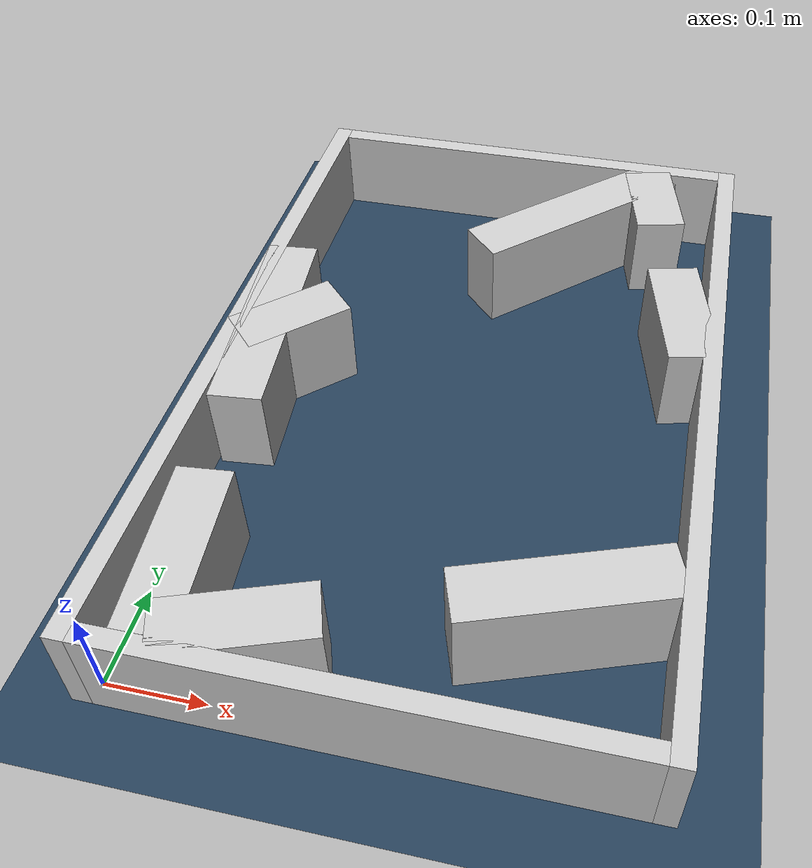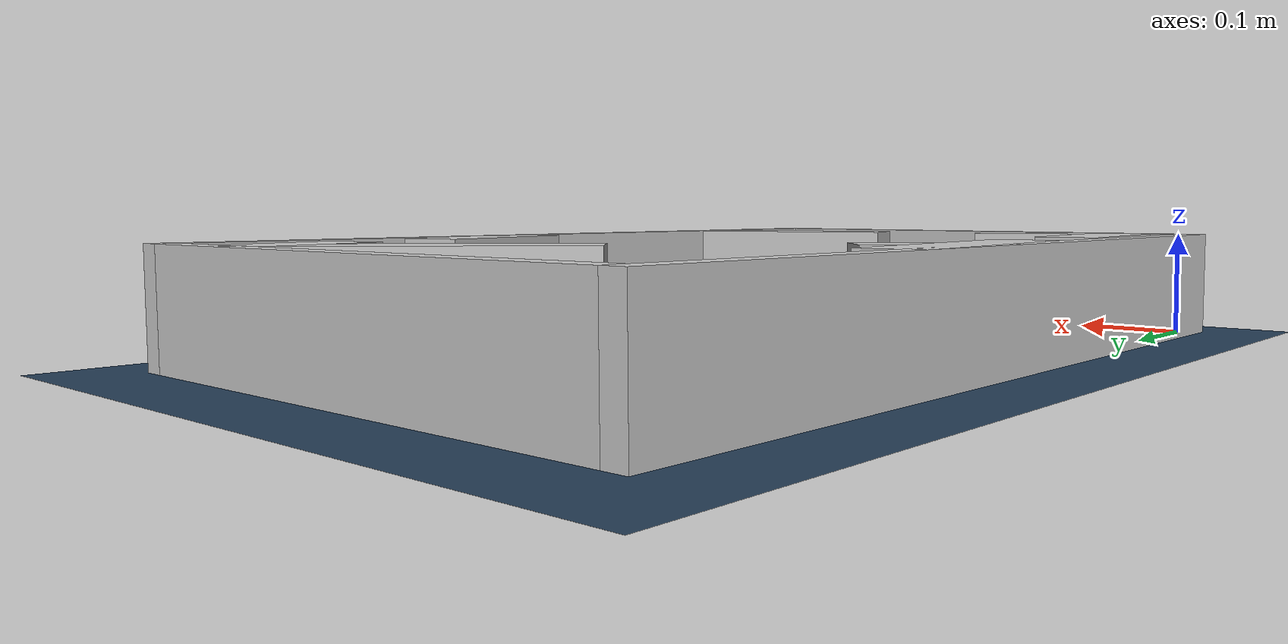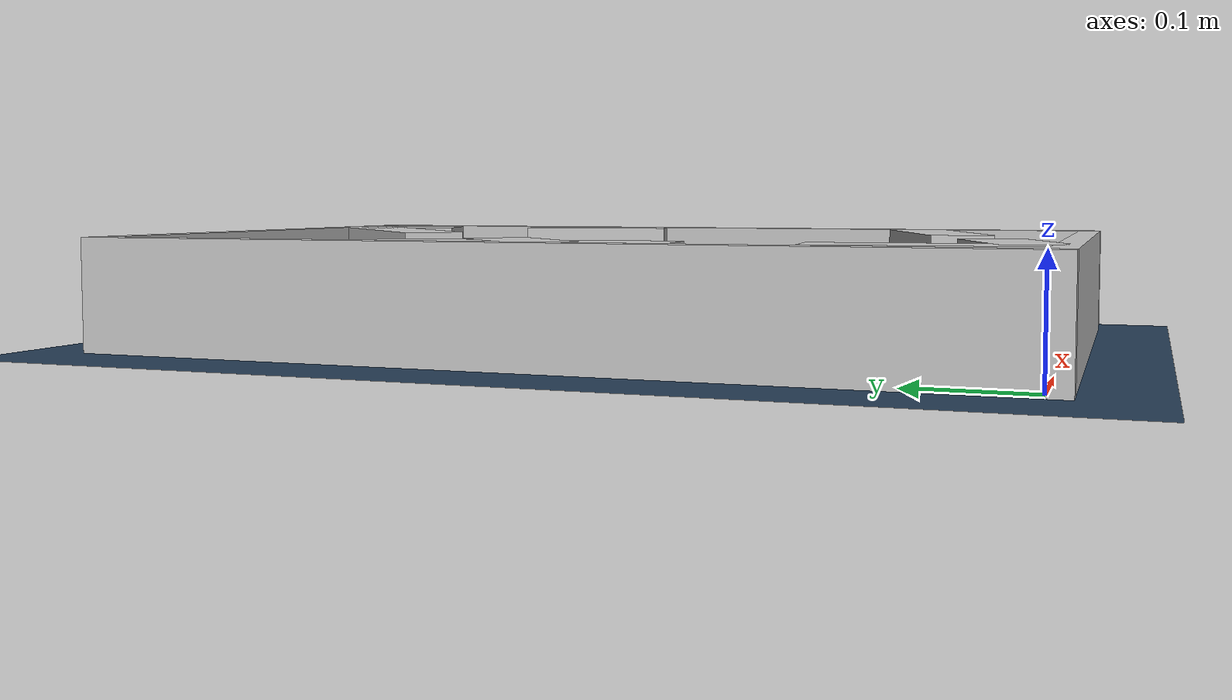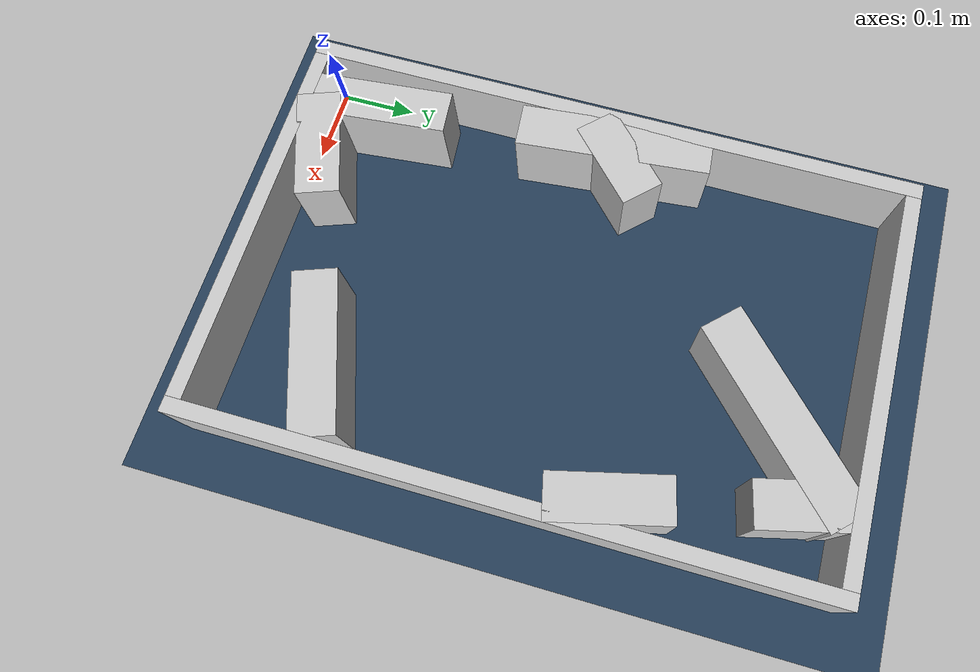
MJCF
<?xml version="1.0" ?>
<mujoco model="generated_real_template">
  <compiler angle="degree"/>
  <option timestep="0.002" integrator="implicitfast" iterations="100" cone="elliptic"/>
  <default>
    <geom density="1"/>
  </default>
  <asset>
    <texture builtin="gradient" height="3072" rgb1="0.3 0.5 0.7" rgb2="0 0 0" type="skybox" width="512"/>
    <texture builtin="checker" height="300" mark="edge" markrgb="0.8 0.8 0.8" name="groundplane" rgb1="0.2 0.3 0.4" rgb2="0.1 0.2 0.3" type="2d" width="300"/>
    <material name="groundplane" reflectance="0.2" texrepeat="5 5" texture="groundplane" texuniform="true"/>
  </asset>
  <worldbody>
    <light dir="0 0 -1" directional="true" pos="0 0 1.5"/>
    <geom name="floor" type="plane" condim="4" friction="0.5 0.005 0.001" material="groundplane" size="0 0 0.05"/>
    <body name="walls">
      <geom name="wall_boundary_left" type="box" condim="4" friction="1.0 0.005 0.0001" rgba="0.8 0.8 0.8 1" pos="-0.010000 0.387500 0.050000" euler="0 0 0.000000" size="0.010000 0.407500 0.050000"/>
      <geom name="wall_boundary_right" type="box" condim="4" friction="1.0 0.005 0.0001" rgba="0.8 0.8 0.8 1" pos="0.500000 0.387500 0.050000" euler="0 0 0.000000" size="0.010000 0.407500 0.050000"/>
      <geom name="wall_boundary_bottom" type="box" condim="4" friction="1.0 0.005 0.0001" rgba="0.8 0.8 0.8 1" pos="0.245000 -0.010000 0.050000" euler="0 0 0.000000" size="0.245000 0.010000 0.050000"/>
      <geom name="wall_boundary_top" type="box" condim="4" friction="1.0 0.005 0.0001" rgba="0.8 0.8 0.8 1" pos="0.245000 0.785000 0.050000" euler="0 0 0.000000" size="0.245000 0.010000 0.050000"/>
      <geom name="wall_inner_1_1" type="box" condim="4" friction="1.0 0.005 0.0001" rgba="0.8 0.8 0.8 1" pos="0.464695 0.508222 0.050000" euler="0 0 103.491467" size="0.075398 0.028500 0.050000"/>
      <geom name="wall_inner_1_2" type="box" condim="4" friction="1.0 0.005 0.0001" rgba="0.8 0.8 0.8 1" pos="0.413971 0.719641 0.050000" euler="0 0 103.491467" size="0.056930 0.028500 0.050000"/>
      <geom name="wall_inner_2_1" type="box" condim="4" friction="1.0 0.005 0.0001" rgba="0.8 0.8 0.8 1" pos="0.127503 0.031393 0.050000" euler="0 0 19.745086" size="0.072720 0.028500 0.050000"/>
      <geom name="wall_inner_2_2" type="box" condim="4" friction="1.0 0.005 0.0001" rgba="0.8 0.8 0.8 1" pos="0.392673 0.126573 0.050000" euler="0 0 19.745086" size="0.103407 0.028500 0.050000"/>
      <geom name="wall_inner_3_1" type="box" condim="4" friction="1.0 0.005 0.0001" rgba="0.8 0.8 0.8 1" pos="0.049498 0.089981 0.050000" euler="0 0 95.378103" size="0.090379 0.028500 0.050000"/>
      <geom name="wall_inner_3_2" type="box" condim="4" friction="1.0 0.005 0.0001" rgba="0.8 0.8 0.8 1" pos="0.020222 0.400959 0.050000" euler="0 0 95.378103" size="0.126387 0.028500 0.050000"/>
      <geom name="wall_inner_4_1" type="box" condim="4" friction="1.0 0.005 0.0001" rgba="0.8 0.8 0.8 1" pos="0.043469 0.412046 0.050000" euler="0 0 44.051636" size="0.060481 0.028500 0.050000"/>
      <geom name="wall_inner_4_2" type="box" condim="4" friction="1.0 0.005 0.0001" rgba="0.8 0.8 0.8 1" pos="0.319563 0.679148 0.050000" euler="0 0 44.051636" size="0.137159 0.028500 0.050000"/>
    </body>
  </worldbody>
</mujoco>
